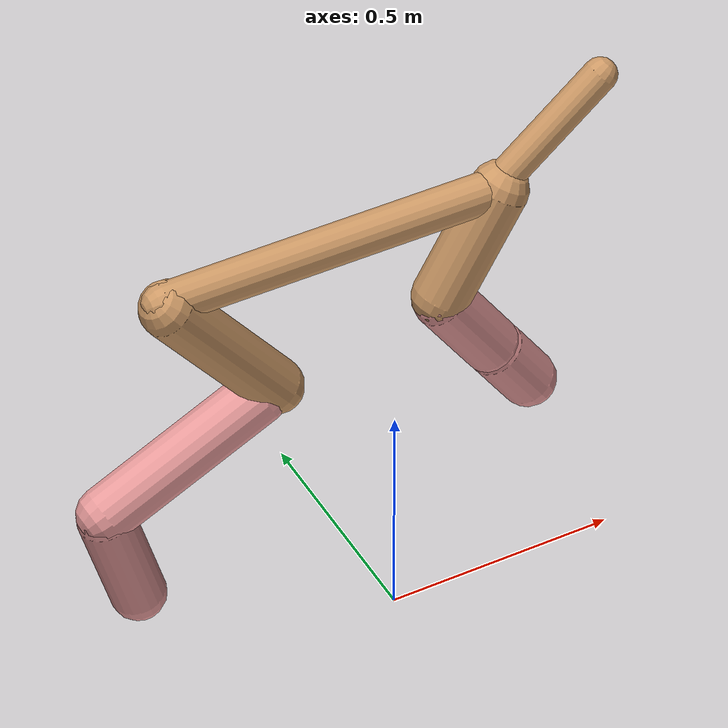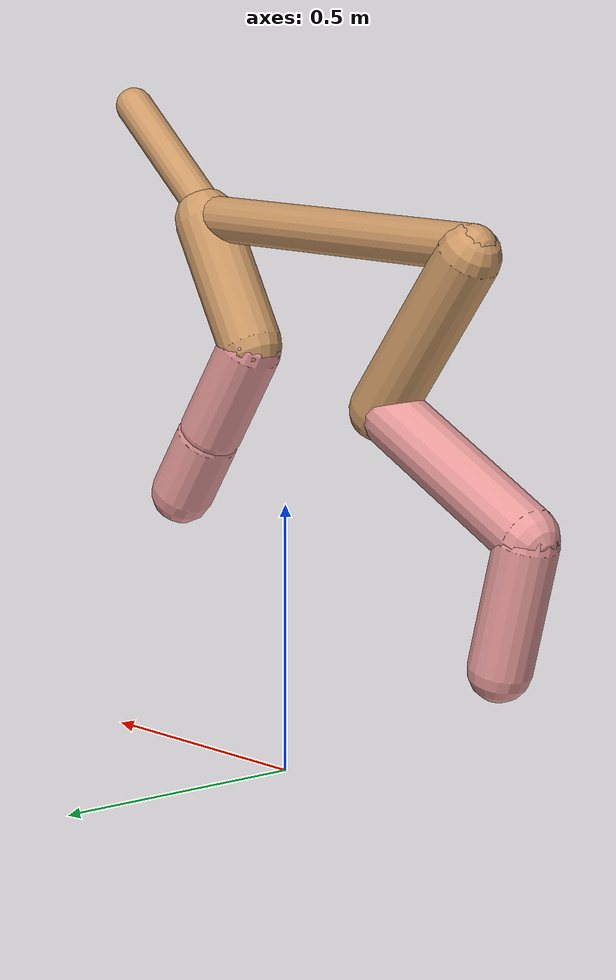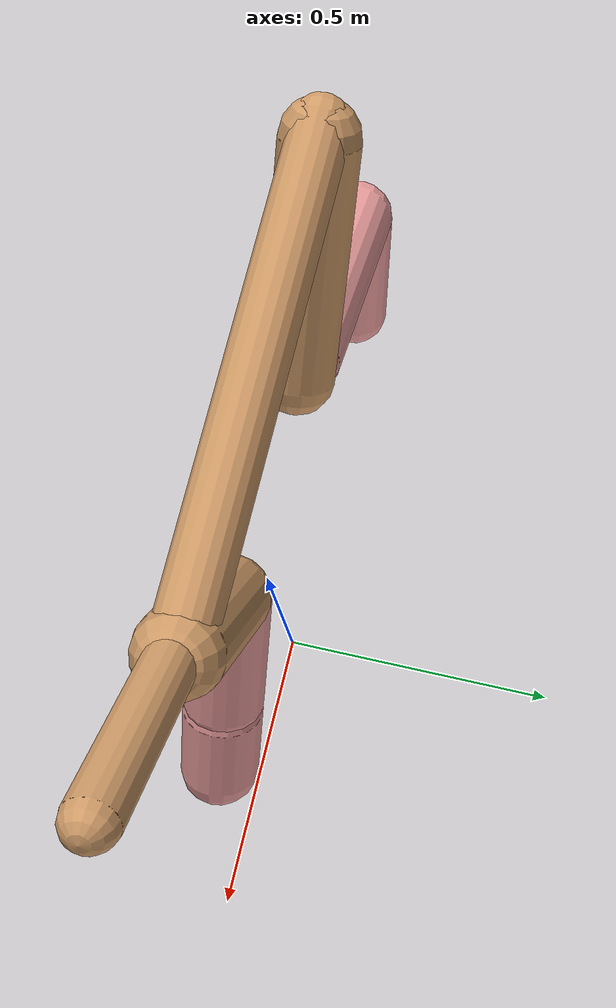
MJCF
<mujoco model="cheetah">
  <compiler angle="radian" coordinate="local" inertiafromgeom="true" settotalmass="14" />
  <default>
    <joint armature=".1" damping=".01" limited="true" solimplimit="0 .8 .03" solreflimit=".02 1" stiffness="8" />
    <geom conaffinity="0" condim="3" contype="1" friction="0.8 .1 .1" rgba="0.8 0.6 .4 1" solimp="0.0 0.8 0.01" solref="0.02 1" />
    <motor ctrllimited="true" ctrlrange="-1 1" />
  </default>
  <size nstack="300000" nuser_geom="1" />
  <option gravity="0 0 -9.81" timestep="0.01" />
  <worldbody>
    <body name="torso" pos="0.0 0.0 1.0129939857721455">
      <joint armature="0" axis="1 0 0" damping="0" limited="false" name="ignorex" pos="0 0 0" stiffness="0" type="slide" />
      <joint armature="0" axis="0 0 1" damping="0" limited="false" name="ignorez" pos="0 0 0" stiffness="0" type="slide" />
      <joint armature="0" axis="0 1 0" damping="0" limited="false" name="ignorey" pos="0 0 0" stiffness="0" type="hinge" />
      <geom fromto="-0.5 0.0 0.0 0.2315374268705675 0.0 0.0" name="torso" size="0.042317961262560204" type="capsule" />
      <geom axisangle="0 1 0 .87" name="head" pos="0.3315374268705674 0.0 0.1" size="0.034693351190877963 0.15" type="capsule" />

      <body name="bthigh" pos="-.5 0 0">
        <joint axis="0 1 0" damping="6" name="bthigh" pos="0 0 0" range="-.52 1.05" stiffness="240" type="hinge" />
        <geom axisangle="0 1 0 -3.8" name="bthigh" pos="0.1234501620126647 0.0 -0.1604852106164641" size="0.05778006740526601 0.183461125370306" type="capsule" />
        <body name="bshin" pos="0.20690032402532937 0.0 -0.3109704212329282">
          <joint axis="0 1 0" damping="4.5" name="bshin" pos="0 0 0" range="-.785 .785" stiffness="180" type="hinge" />
          <geom axisangle="0 1 0 -2.03" name="bshin" pos="-0.17558690654585354 0.0 -0.08779345327292677" rgba="0.9 0.6 0.6 1" size="0.05778006740526601 0.18978737107273036" type="capsule" />
          <body name="bfoot" pos="-0.3511738130917071 0.0 -0.17558690654585354">
            <joint axis="0 1 0" damping="3" name="bfoot" pos="0 0 0" range="-.4 .785" stiffness="120" type="hinge" />
            <geom axisangle="0 1 0 -.27" name="bfoot" pos="0.0373670704641718 0.0 -0.12082019450082217" rgba="0.9 0.6 0.6 1" size="0.05778006740526601 0.1189334192055777" type="capsule" />
            <inertial mass="10" />
          </body>
        </body>
      </body>
      <body name="fthigh" pos="0.23153742687056744 0.0 0.0">
        <joint axis="0 1 0" damping="4.5" name="fthigh" pos="0 0 0" range="-1.5 0.8" stiffness="180" type="hinge" />
        <geom axisangle="0 1 0 .52" name="fthigh" pos="-0.06739172611214787 0.0 -0.11552867333511062" size="0.05953750623115707 0.12782352872912425" type="capsule" />
        <body name="fshin" pos="-0.13478345222429575 0.0 -0.23105734667022124">
          <joint axis="0 1 0" damping="3" name="fshin" pos="0 0 0" range="-1.2 1.1" stiffness="120" type="hinge" />
          <geom axisangle="0 1 0 -.6" name="fshin" pos="0.06258449508780066 0.0 -0.08665545473695475" rgba="0.9 0.6 0.6 1" size="0.05953750623115707 0.10187439131794865" type="capsule" />
          <body name="ffoot" pos="0.12516899017560132 0.0 -0.1733109094739095">
            <joint axis="0 1 0" damping="1.5" name="ffoot" pos="0 0 0" range="-3.1 -0.3" stiffness="60" type="hinge" />
            <geom axisangle="0 1 0 -.6" name="ffoot" pos="0.04352672834950405 0.0 -0.06770824409922853" rgba="0.9 0.6 0.6 1" size="0.05953750623115707 0.06727554143638119" type="capsule" />
            <inertial mass="10" />
          </body>
        </body>
      </body>
    </body>
  </worldbody>
  <actuator>
    <motor gear="120" joint="bthigh" name="bthigh" />
    <motor gear="90" joint="bshin" name="bshin" />
    <motor gear="60" joint="bfoot" name="bfoot" />
    <motor gear="120" joint="fthigh" name="fthigh" />
    <motor gear="60" joint="fshin" name="fshin" />
    <motor gear="30" joint="ffoot" name="ffoot" />
  </actuator>
</mujoco>
